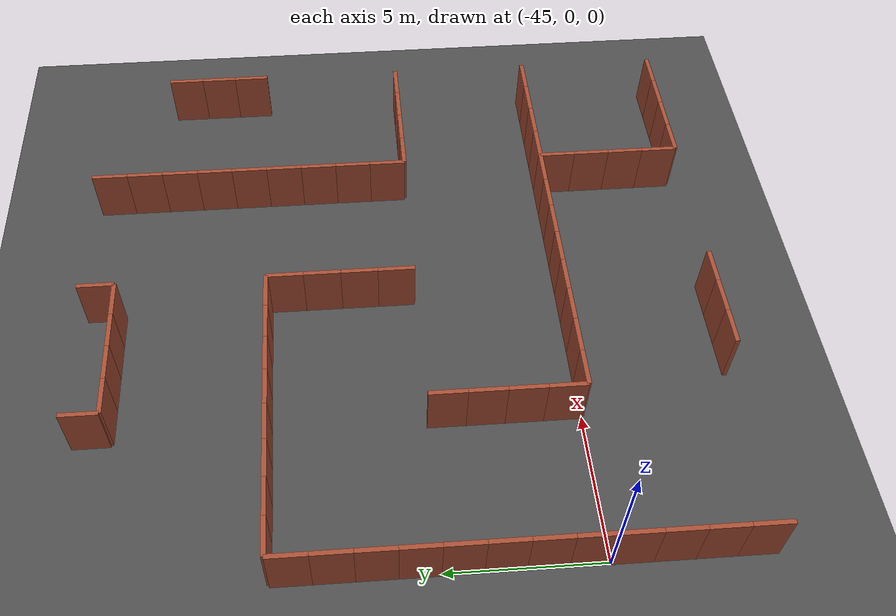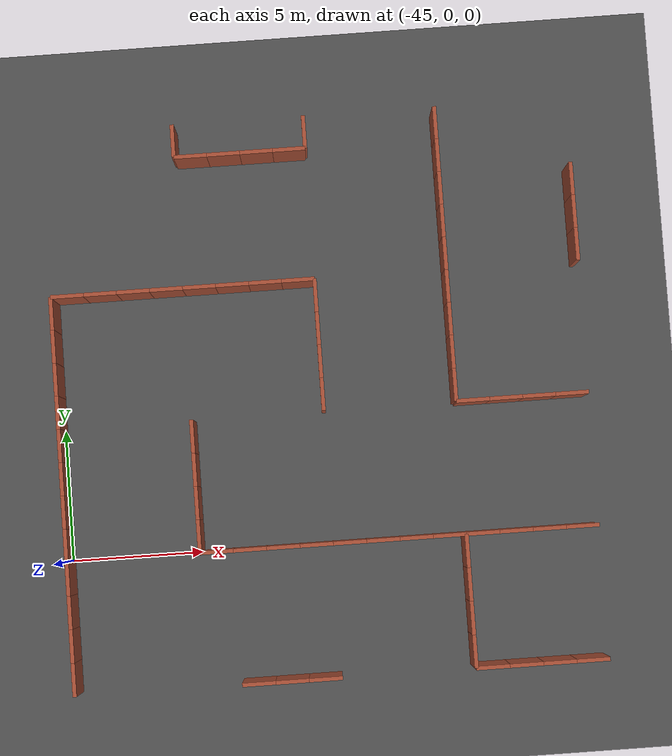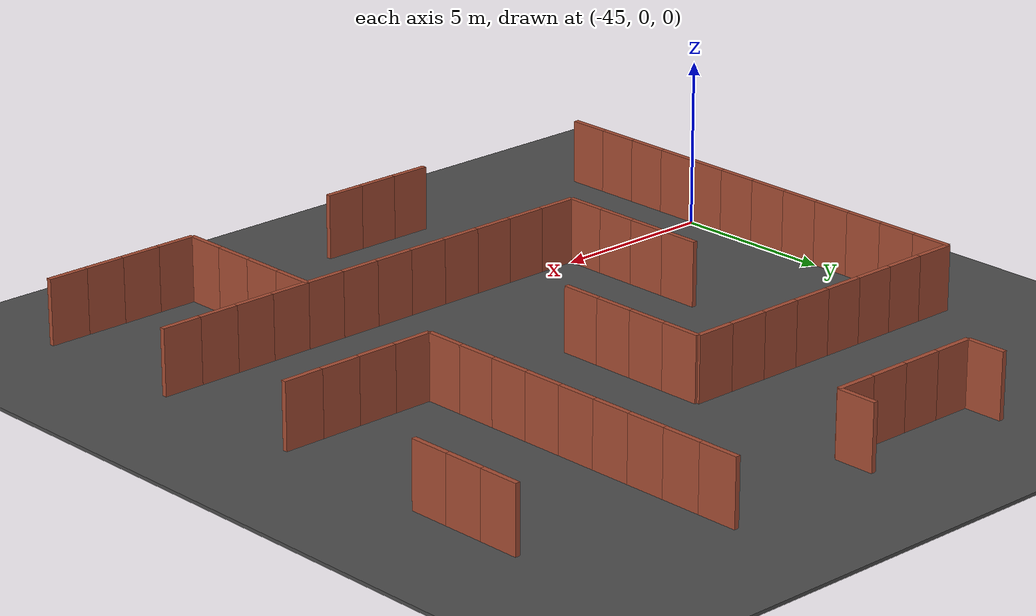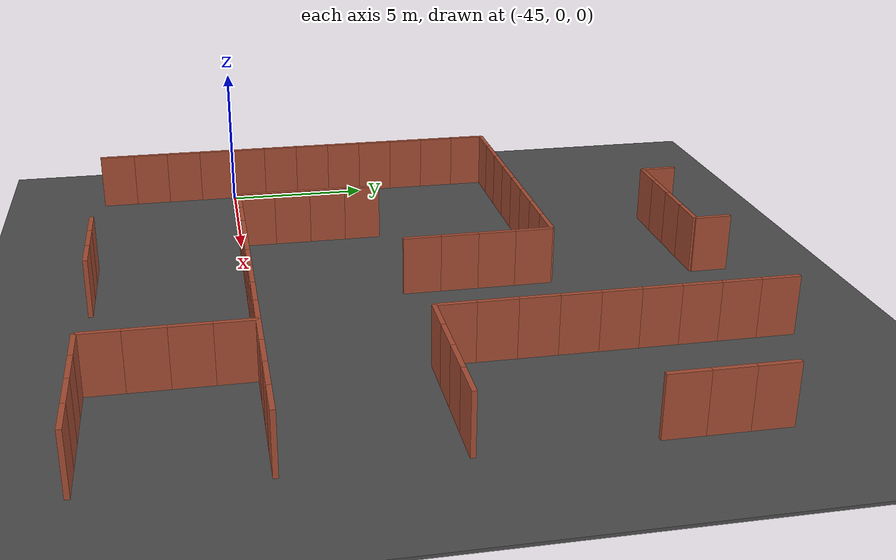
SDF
<sdf version="1.6">
 <world name="default">
  <model name="ground_plane">
   <static>1</static>
   <link name="link">
    <collision name="collision">
     <geometry><plane><normal>0 0 1</normal><size>100 100</size></plane></geometry>
     <surface><friction><ode><mu>100</mu><mu2>50</mu2></ode></friction></surface>
    </collision>
    <visual name="visual">
     <cast_shadows>0</cast_shadows>
     <geometry><plane><normal>0 0 1</normal><size>100 100</size></plane></geometry>
     <material>
      <script><uri>file://media/materials/scripts/gazebo.material</uri><name>Gazebo/Grey</name></script>
     </material>
    </visual>
   </link>
  </model>
  <model name="asphalt_plane">
   <static>1</static>
   <link name="link">
    <collision name="collision"><geometry><box><size>100 100 0.1</size></box></geometry></collision>
    <visual name="visual">
     <cast_shadows>0</cast_shadows>
     <geometry><box><size>100 100 0.1</size></box></geometry>
     <material>
      <script>
       <uri>model://asphalt_plane/materials/scripts</uri>
       <uri>model://asphalt_plane/materials/textures</uri>
       <name>vrc/asphalt</name>
      </script>
     </material>
    </visual>
   </link>
  </model>
  <model name="brick_wall_2_18_horizontal1">
   <pose>-45 -4.375 0 0 -0 1.5708</pose>
   <link name="Wall_0">
    <collision name="Wall_0_Collision">
     <geometry><box><size>1.25 0.15 2</size></box></geometry>
     <pose>0 0 1 0 -0 0</pose>
    </collision>
    <visual name="Wall_0_Visual">
     <pose>0 0 1 0 -0 0</pose>
     <geometry><box><size>1.25 0.15 2</size></box></geometry>
     <material>
      <script><uri>file://media/materials/scripts/gazebo.material</uri><name>Gazebo/Bricks</name></script>
      <ambient>1 1 1 1</ambient>
     </material>
     <meta><layer>0</layer></meta>
    </visual>
   </link>
   <static>1</static>
  </model>
  <model name="brick_wall_2_19_horizontal1">
   <pose>-45 -1.875 0 0 -0 1.5708</pose>
   <link name="Wall_0">
    <collision name="Wall_0_Collision">
     <geometry><box><size>1.25 0.15 2</size></box></geometry>
     <pose>0 0 1 0 -0 0</pose>
    </collision>
    <visual name="Wall_0_Visual">
     <pose>0 0 1 0 -0 0</pose>
     <geometry><box><size>1.25 0.15 2</size></box></geometry>
     <material>
      <script><uri>file://media/materials/scripts/gazebo.material</uri><name>Gazebo/Bricks</name></script>
      <ambient>1 1 1 1</ambient>
     </material>
     <meta><layer>0</layer></meta>
    </visual>
   </link>
   <static>1</static>
  </model>
  <model name="brick_wall_2_19_horizontal2">
   <pose>-45 -3.125 0 0 -0 1.5708</pose>
   <link name="Wall_0">
    <collision name="Wall_0_Collision">
     <geometry><box><size>1.25 0.15 2</size></box></geometry>
     <pose>0 0 1 0 -0 0</pose>
    </collision>
    <visual name="Wall_0_Visual">
     <pose>0 0 1 0 -0 0</pose>
     <geometry><box><size>1.25 0.15 2</size></box></geometry>
     <material>
      <script><uri>file://media/materials/scripts/gazebo.material</uri><name>Gazebo/Bricks</name></script>
      <ambient>1 1 1 1</ambient>
     </material>
     <meta><layer>0</layer></meta>
    </visual>
   </link>
   <static>1</static>
  </model>
  <model name="brick_wall_2_20_horizontal1">
   <pose>-45 0.625 0 0 -0 1.5708</pose>
   <link name="Wall_0">
    <collision name="Wall_0_Collision">
     <geometry><box><size>1.25 0.15 2</size></box></geometry>
     <pose>0 0 1 0 -0 0</pose>
    </collision>
    <visual name="Wall_0_Visual">
     <pose>0 0 1 0 -0 0</pose>
     <geometry><box><size>1.25 0.15 2</size></box></geometry>
     <material>
      <script><uri>file://media/materials/scripts/gazebo.material</uri><name>Gazebo/Bricks</name></script>
      <ambient>1 1 1 1</ambient>
     </material>
     <meta><layer>0</layer></meta>
    </visual>
   </link>
   <static>1</static>
  </model>
  <model name="brick_wall_2_20_horizontal2">
   <pose>-45 -0.625 0 0 -0 1.5708</pose>
   <link name="Wall_0">
    <collision name="Wall_0_Collision">
     <geometry><box><size>1.25 0.15 2</size></box></geometry>
     <pose>0 0 1 0 -0 0</pose>
    </collision>
    <visual name="Wall_0_Visual">
     <pose>0 0 1 0 -0 0</pose>
     <geometry><box><size>1.25 0.15 2</size></box></geometry>
     <material>
      <script><uri>file://media/materials/scripts/gazebo.material</uri><name>Gazebo/Bricks</name></script>
      <ambient>1 1 1 1</ambient>
     </material>
     <meta><layer>0</layer></meta>
    </visual>
   </link>
   <static>1</static>
  </model>
  <model name="brick_wall_2_21_horizontal1">
   <pose>-45 3.125 0 0 -0 1.5708</pose>
   <link name="Wall_0">
    <collision name="Wall_0_Collision">
     <geometry><box><size>1.25 0.15 2</size></box></geometry>
     <pose>0 0 1 0 -0 0</pose>
    </collision>
    <visual name="Wall_0_Visual">
     <pose>0 0 1 0 -0 0</pose>
     <geometry><box><size>1.25 0.15 2</size></box></geometry>
     <material>
      <script><uri>file://media/materials/scripts/gazebo.material</uri><name>Gazebo/Bricks</name></script>
      <ambient>1 1 1 1</ambient>
     </material>
     <meta><layer>0</layer></meta>
    </visual>
   </link>
   <static>1</static>
  </model>
  <model name="brick_wall_2_21_horizontal2">
   <pose>-45 1.875 0 0 -0 1.5708</pose>
   <link name="Wall_0">
    <collision name="Wall_0_Collision">
     <geometry><box><size>1.25 0.15 2</size></box></geometry>
     <pose>0 0 1 0 -0 0</pose>
    </collision>
    <visual name="Wall_0_Visual">
     <pose>0 0 1 0 -0 0</pose>
     <geometry><box><size>1.25 0.15 2</size></box></geometry>
     <material>
      <script><uri>file://media/materials/scripts/gazebo.material</uri><name>Gazebo/Bricks</name></script>
      <ambient>1 1 1 1</ambient>
     </material>
     <meta><layer>0</layer></meta>
    </visual>
   </link>
   <static>1</static>
  </model>
  <model name="brick_wall_2_22_horizontal1">
   <pose>-45 5.625 0 0 -0 1.5708</pose>
   <link name="Wall_0">
    <collision name="Wall_0_Collision">
     <geometry><box><size>1.25 0.15 2</size></box></geometry>
     <pose>0 0 1 0 -0 0</pose>
    </collision>
    <visual name="Wall_0_Visual">
     <pose>0 0 1 0 -0 0</pose>
     <geometry><box><size>1.25 0.15 2</size></box></geometry>
     <material>
      <script><uri>file://media/materials/scripts/gazebo.material</uri><name>Gazebo/Bricks</name></script>
      <ambient>1 1 1 1</ambient>
     </material>
     <meta><layer>0</layer></meta>
    </visual>
   </link>
   <static>1</static>
  </model>
  <model name="brick_wall_2_22_horizontal2">
   <pose>-45 4.375 0 0 -0 1.5708</pose>
   <link name="Wall_0">
    <collision name="Wall_0_Collision">
     <geometry><box><size>1.25 0.15 2</size></box></geometry>
     <pose>0 0 1 0 -0 0</pose>
    </collision>
    <visual name="Wall_0_Visual">
     <pose>0 0 1 0 -0 0</pose>
     <geometry><box><size>1.25 0.15 2</size></box></geometry>
     <material>
      <script><uri>file://media/materials/scripts/gazebo.material</uri><name>Gazebo/Bricks</name></script>
      <ambient>1 1 1 1</ambient>
     </material>
     <meta><layer>0</layer></meta>
    </visual>
   </link>
   <static>1</static>
  </model>
  <model name="brick_wall_2_23_horizontal1">
   <pose>-45 8.125 0 0 -0 1.5708</pose>
   <link name="Wall_0">
    <collision name="Wall_0_Collision">
     <geometry><box><size>1.25 0.15 2</size></box></geometry>
     <pose>0 0 1 0 -0 0</pose>
    </collision>
    <visual name="Wall_0_Visual">
     <pose>0 0 1 0 -0 0</pose>
     <geometry><box><size>1.25 0.15 2</size></box></geometry>
     <material>
      <script><uri>file://media/materials/scripts/gazebo.material</uri><name>Gazebo/Bricks</name></script>
      <ambient>1 1 1 1</ambient>
     </material>
     <meta><layer>0</layer></meta>
    </visual>
   </link>
   <static>1</static>
  </model>
  <model name="brick_wall_2_23_horizontal2">
   <pose>-45 6.875 0 0 -0 1.5708</pose>
   <link name="Wall_0">
    <collision name="Wall_0_Collision">
     <geometry><box><size>1.25 0.15 2</size></box></geometry>
     <pose>0 0 1 0 -0 0</pose>
    </collision>
    <visual name="Wall_0_Visual">
     <pose>0 0 1 0 -0 0</pose>
     <geometry><box><size>1.25 0.15 2</size></box></geometry>
     <material>
      <script><uri>file://media/materials/scripts/gazebo.material</uri><name>Gazebo/Bricks</name></script>
      <ambient>1 1 1 1</ambient>
     </material>
     <meta><layer>0</layer></meta>
    </visual>
   </link>
   <static>1</static>
  </model>
  <model name="brick_wall_2_24_vertical1">
   <pose>-44.375 10 0 0 -0 0</pose>
   <link name="Wall_0">
    <collision name="Wall_0_Collision">
     <geometry><box><size>1.25 0.15 2</size></box></geometry>
     <pose>0 0 1 0 -0 0</pose>
    </collision>
    <visual name="Wall_0_Visual">
     <pose>0 0 1 0 -0 0</pose>
     <geometry><box><size>1.25 0.15 2</size></box></geometry>
     <material>
      <script><uri>file://media/materials/scripts/gazebo.material</uri><name>Gazebo/Bricks</name></script>
      <ambient>1 1 1 1</ambient>
     </material>
     <meta><layer>0</layer></meta>
    </visual>
   </link>
   <static>1</static>
  </model>
  <model name="brick_wall_2_24_horizontal2">
   <pose>-45 9.375 0 0 -0 1.5708</pose>
   <link name="Wall_0">
    <collision name="Wall_0_Collision">
     <geometry><box><size>1.25 0.15 2</size></box></geometry>
     <pose>0 0 1 0 -0 0</pose>
    </collision>
    <visual name="Wall_0_Visual">
     <pose>0 0 1 0 -0 0</pose>
     <geometry><box><size>1.25 0.15 2</size></box></geometry>
     <material>
      <script><uri>file://media/materials/scripts/gazebo.material</uri><name>Gazebo/Bricks</name></script>
      <ambient>1 1 1 1</ambient>
     </material>
     <meta><layer>0</layer></meta>
    </visual>
   </link>
   <static>1</static>
  </model>
  <model name="brick_wall_3_24_vertical1">
   <pose>-41.875 10 0 0 -0 0</pose>
   <link name="Wall_0">
    <collision name="Wall_0_Collision">
     <geometry><box><size>1.25 0.15 2</size></box></geometry>
     <pose>0 0 1 0 -0 0</pose>
    </collision>
    <visual name="Wall_0_Visual">
     <pose>0 0 1 0 -0 0</pose>
     <geometry><box><size>1.25 0.15 2</size></box></geometry>
     <material>
      <script><uri>file://media/materials/scripts/gazebo.material</uri><name>Gazebo/Bricks</name></script>
      <ambient>1 1 1 1</ambient>
     </material>
     <meta><layer>0</layer></meta>
    </visual>
   </link>
   <static>1</static>
  </model>
  <model name="brick_wall_3_24_vertical2">
   <pose>-43.125 10 0 0 -0 0</pose>
   <link name="Wall_0">
    <collision name="Wall_0_Collision">
     <geometry><box><size>1.25 0.15 2</size></box></geometry>
     <pose>0 0 1 0 -0 0</pose>
    </collision>
    <visual name="Wall_0_Visual">
     <pose>0 0 1 0 -0 0</pose>
     <geometry><box><size>1.25 0.15 2</size></box></geometry>
     <material>
      <script><uri>file://media/materials/scripts/gazebo.material</uri><name>Gazebo/Bricks</name></script>
      <ambient>1 1 1 1</ambient>
     </material>
     <meta><layer>0</layer></meta>
    </visual>
   </link>
   <static>1</static>
  </model>
  <model name="brick_wall_4_20_vertical1">
   <pose>-39.375 0 0 0 -0 0</pose>
   <link name="Wall_0">
    <collision name="Wall_0_Collision">
     <geometry><box><size>1.25 0.15 2</size></box></geometry>
     <pose>0 0 1 0 -0 0</pose>
    </collision>
    <visual name="Wall_0_Visual">
     <pose>0 0 1 0 -0 0</pose>
     <geometry><box><size>1.25 0.15 2</size></box></geometry>
     <material>
      <script><uri>file://media/materials/scripts/gazebo.material</uri><name>Gazebo/Bricks</name></script>
      <ambient>1 1 1 1</ambient>
     </material>
     <meta><layer>0</layer></meta>
    </visual>
   </link>
   <static>1</static>
  </model>
  <model name="brick_wall_4_20_horizontal1">
   <pose>-40 0.625 0 0 -0 1.5708</pose>
   <link name="Wall_0">
    <collision name="Wall_0_Collision">
     <geometry><box><size>1.25 0.15 2</size></box></geometry>
     <pose>0 0 1 0 -0 0</pose>
    </collision>
    <visual name="Wall_0_Visual">
     <pose>0 0 1 0 -0 0</pose>
     <geometry><box><size>1.25 0.15 2</size></box></geometry>
     <material>
      <script><uri>file://media/materials/scripts/gazebo.material</uri><name>Gazebo/Bricks</name></script>
      <ambient>1 1 1 1</ambient>
     </material>
     <meta><layer>0</layer></meta>
    </visual>
   </link>
   <static>1</static>
  </model>
  <model name="brick_wall_4_21_horizontal1">
   <pose>-40 3.125 0 0 -0 1.5708</pose>
   <link name="Wall_0">
    <collision name="Wall_0_Collision">
     <geometry><box><size>1.25 0.15 2</size></box></geometry>
     <pose>0 0 1 0 -0 0</pose>
    </collision>
    <visual name="Wall_0_Visual">
     <pose>0 0 1 0 -0 0</pose>
     <geometry><box><size>1.25 0.15 2</size></box></geometry>
     <material>
      <script><uri>file://media/materials/scripts/gazebo.material</uri><name>Gazebo/Bricks</name></script>
      <ambient>1 1 1 1</ambient>
     </material>
     <meta><layer>0</layer></meta>
    </visual>
   </link>
   <static>1</static>
  </model>
  <model name="brick_wall_4_21_horizontal2">
   <pose>-40 1.875 0 0 -0 1.5708</pose>
   <link name="Wall_0">
    <collision name="Wall_0_Collision">
     <geometry><box><size>1.25 0.15 2</size></box></geometry>
     <pose>0 0 1 0 -0 0</pose>
    </collision>
    <visual name="Wall_0_Visual">
     <pose>0 0 1 0 -0 0</pose>
     <geometry><box><size>1.25 0.15 2</size></box></geometry>
     <material>
      <script><uri>file://media/materials/scripts/gazebo.material</uri><name>Gazebo/Bricks</name></script>
      <ambient>1 1 1 1</ambient>
     </material>
     <meta><layer>0</layer></meta>
    </visual>
   </link>
   <static>1</static>
  </model>
  <model name="brick_wall_4_22_horizontal2">
   <pose>-40 4.375 0 0 -0 1.5708</pose>
   <link name="Wall_0">
    <collision name="Wall_0_Collision">
     <geometry><box><size>1.25 0.15 2</size></box></geometry>
     <pose>0 0 1 0 -0 0</pose>
    </collision>
    <visual name="Wall_0_Visual">
     <pose>0 0 1 0 -0 0</pose>
     <geometry><box><size>1.25 0.15 2</size></box></geometry>
     <material>
      <script><uri>file://media/materials/scripts/gazebo.material</uri><name>Gazebo/Bricks</name></script>
      <ambient>1 1 1 1</ambient>
     </material>
     <meta><layer>0</layer></meta>
    </visual>
   </link>
   <static>1</static>
  </model>
  <model name="brick_wall_4_24_vertical1">
   <pose>-39.375 10 0 0 -0 0</pose>
   <link name="Wall_0">
    <collision name="Wall_0_Collision">
     <geometry><box><size>1.25 0.15 2</size></box></geometry>
     <pose>0 0 1 0 -0 0</pose>
    </collision>
    <visual name="Wall_0_Visual">
     <pose>0 0 1 0 -0 0</pose>
     <geometry><box><size>1.25 0.15 2</size></box></geometry>
     <material>
      <script><uri>file://media/materials/scripts/gazebo.material</uri><name>Gazebo/Bricks</name></script>
      <ambient>1 1 1 1</ambient>
     </material>
     <meta><layer>0</layer></meta>
    </visual>
   </link>
   <static>1</static>
  </model>
  <model name="brick_wall_4_24_vertical2">
   <pose>-40.625 10 0 0 -0 0</pose>
   <link name="Wall_0">
    <collision name="Wall_0_Collision">
     <geometry><box><size>1.25 0.15 2</size></box></geometry>
     <pose>0 0 1 0 -0 0</pose>
    </collision>
    <visual name="Wall_0_Visual">
     <pose>0 0 1 0 -0 0</pose>
     <geometry><box><size>1.25 0.15 2</size></box></geometry>
     <material>
      <script><uri>file://media/materials/scripts/gazebo.material</uri><name>Gazebo/Bricks</name></script>
      <ambient>1 1 1 1</ambient>
     </material>
     <meta><layer>0</layer></meta>
    </visual>
   </link>
   <static>1</static>
  </model>
  <model name="brick_wall_4_26_vertical1">
   <pose>-39.375 15 0 0 -0 0</pose>
   <link name="Wall_0">
    <collision name="Wall_0_Collision">
     <geometry><box><size>1.25 0.15 2</size></box></geometry>
     <pose>0 0 1 0 -0 0</pose>
    </collision>
    <visual name="Wall_0_Visual">
     <pose>0 0 1 0 -0 0</pose>
     <geometry><box><size>1.25 0.15 2</size></box></geometry>
     <material>
      <script><uri>file://media/materials/scripts/gazebo.material</uri><name>Gazebo/Bricks</name></script>
      <ambient>1 1 1 1</ambient>
     </material>
     <meta><layer>0</layer></meta>
    </visual>
   </link>
   <static>1</static>
  </model>
  <model name="brick_wall_4_26_horizontal1">
   <pose>-40 15.625 0 0 -0 1.5708</pose>
   <link name="Wall_0">
    <collision name="Wall_0_Collision">
     <geometry><box><size>1.25 0.15 2</size></box></geometry>
     <pose>0 0 1 0 -0 0</pose>
    </collision>
    <visual name="Wall_0_Visual">
     <pose>0 0 1 0 -0 0</pose>
     <geometry><box><size>1.25 0.15 2</size></box></geometry>
     <material>
      <script><uri>file://media/materials/scripts/gazebo.material</uri><name>Gazebo/Bricks</name></script>
      <ambient>1 1 1 1</ambient>
     </material>
     <meta><layer>0</layer></meta>
    </visual>
   </link>
   <static>1</static>
  </model>
  <model name="brick_wall_5_18_vertical1">
   <pose>-36.875 -5 0 0 -0 0</pose>
   <link name="Wall_0">
    <collision name="Wall_0_Collision">
     <geometry><box><size>1.25 0.15 2</size></box></geometry>
     <pose>0 0 1 0 -0 0</pose>
    </collision>
    <visual name="Wall_0_Visual">
     <pose>0 0 1 0 -0 0</pose>
     <geometry><box><size>1.25 0.15 2</size></box></geometry>
     <material>
      <script><uri>file://media/materials/scripts/gazebo.material</uri><name>Gazebo/Bricks</name></script>
      <ambient>1 1 1 1</ambient>
     </material>
     <meta><layer>0</layer></meta>
    </visual>
   </link>
   <static>1</static>
  </model>
  <model name="brick_wall_5_18_vertical2">
   <pose>-38.125 -5 0 0 -0 0</pose>
   <link name="Wall_0">
    <collision name="Wall_0_Collision">
     <geometry><box><size>1.25 0.15 2</size></box></geometry>
     <pose>0 0 1 0 -0 0</pose>
    </collision>
    <visual name="Wall_0_Visual">
     <pose>0 0 1 0 -0 0</pose>
     <geometry><box><size>1.25 0.15 2</size></box></geometry>
     <material>
      <script><uri>file://media/materials/scripts/gazebo.material</uri><name>Gazebo/Bricks</name></script>
      <ambient>1 1 1 1</ambient>
     </material>
     <meta><layer>0</layer></meta>
    </visual>
   </link>
   <static>1</static>
  </model>
  <model name="brick_wall_5_20_vertical1">
   <pose>-36.875 0 0 0 -0 0</pose>
   <link name="Wall_0">
    <collision name="Wall_0_Collision">
     <geometry><box><size>1.25 0.15 2</size></box></geometry>
     <pose>0 0 1 0 -0 0</pose>
    </collision>
    <visual name="Wall_0_Visual">
     <pose>0 0 1 0 -0 0</pose>
     <geometry><box><size>1.25 0.15 2</size></box></geometry>
     <material>
      <script><uri>file://media/materials/scripts/gazebo.material</uri><name>Gazebo/Bricks</name></script>
      <ambient>1 1 1 1</ambient>
     </material>
     <meta><layer>0</layer></meta>
    </visual>
   </link>
   <static>1</static>
  </model>
  <model name="brick_wall_5_20_vertical2">
   <pose>-38.125 0 0 0 -0 0</pose>
   <link name="Wall_0">
    <collision name="Wall_0_Collision">
     <geometry><box><size>1.25 0.15 2</size></box></geometry>
     <pose>0 0 1 0 -0 0</pose>
    </collision>
    <visual name="Wall_0_Visual">
     <pose>0 0 1 0 -0 0</pose>
     <geometry><box><size>1.25 0.15 2</size></box></geometry>
     <material>
      <script><uri>file://media/materials/scripts/gazebo.material</uri><name>Gazebo/Bricks</name></script>
      <ambient>1 1 1 1</ambient>
     </material>
     <meta><layer>0</layer></meta>
    </visual>
   </link>
   <static>1</static>
  </model>
  <model name="brick_wall_5_24_vertical1">
   <pose>-36.875 10 0 0 -0 0</pose>
   <link name="Wall_0">
    <collision name="Wall_0_Collision">
     <geometry><box><size>1.25 0.15 2</size></box></geometry>
     <pose>0 0 1 0 -0 0</pose>
    </collision>
    <visual name="Wall_0_Visual">
     <pose>0 0 1 0 -0 0</pose>
     <geometry><box><size>1.25 0.15 2</size></box></geometry>
     <material>
      <script><uri>file://media/materials/scripts/gazebo.material</uri><name>Gazebo/Bricks</name></script>
      <ambient>1 1 1 1</ambient>
     </material>
     <meta><layer>0</layer></meta>
    </visual>
   </link>
   <static>1</static>
  </model>
  <model name="brick_wall_5_24_vertical2">
   <pose>-38.125 10 0 0 -0 0</pose>
   <link name="Wall_0">
    <collision name="Wall_0_Collision">
     <geometry><box><size>1.25 0.15 2</size></box></geometry>
     <pose>0 0 1 0 -0 0</pose>
    </collision>
    <visual name="Wall_0_Visual">
     <pose>0 0 1 0 -0 0</pose>
     <geometry><box><size>1.25 0.15 2</size></box></geometry>
     <material>
      <script><uri>file://media/materials/scripts/gazebo.material</uri><name>Gazebo/Bricks</name></script>
      <ambient>1 1 1 1</ambient>
     </material>
     <meta><layer>0</layer></meta>
    </visual>
   </link>
   <static>1</static>
  </model>
  <model name="brick_wall_5_26_vertical1">
   <pose>-36.875 15 0 0 -0 0</pose>
   <link name="Wall_0">
    <collision name="Wall_0_Collision">
     <geometry><box><size>1.25 0.15 2</size></box></geometry>
     <pose>0 0 1 0 -0 0</pose>
    </collision>
    <visual name="Wall_0_Visual">
     <pose>0 0 1 0 -0 0</pose>
     <geometry><box><size>1.25 0.15 2</size></box></geometry>
     <material>
      <script><uri>file://media/materials/scripts/gazebo.material</uri><name>Gazebo/Bricks</name></script>
      <ambient>1 1 1 1</ambient>
     </material>
     <meta><layer>0</layer></meta>
    </visual>
   </link>
   <static>1</static>
  </model>
  <model name="brick_wall_5_26_vertical2">
   <pose>-38.125 15 0 0 -0 0</pose>
   <link name="Wall_0">
    <collision name="Wall_0_Collision">
     <geometry><box><size>1.25 0.15 2</size></box></geometry>
     <pose>0 0 1 0 -0 0</pose>
    </collision>
    <visual name="Wall_0_Visual">
     <pose>0 0 1 0 -0 0</pose>
     <geometry><box><size>1.25 0.15 2</size></box></geometry>
     <material>
      <script><uri>file://media/materials/scripts/gazebo.material</uri><name>Gazebo/Bricks</name></script>
      <ambient>1 1 1 1</ambient>
     </material>
     <meta><layer>0</layer></meta>
    </visual>
   </link>
   <static>1</static>
  </model>
  <model name="brick_wall_6_18_vertical2">
   <pose>-35.625 -5 0 0 -0 0</pose>
   <link name="Wall_0">
    <collision name="Wall_0_Collision">
     <geometry><box><size>1.25 0.15 2</size></box></geometry>
     <pose>0 0 1 0 -0 0</pose>
    </collision>
    <visual name="Wall_0_Visual">
     <pose>0 0 1 0 -0 0</pose>
     <geometry><box><size>1.25 0.15 2</size></box></geometry>
     <material>
      <script><uri>file://media/materials/scripts/gazebo.material</uri><name>Gazebo/Bricks</name></script>
      <ambient>1 1 1 1</ambient>
     </material>
     <meta><layer>0</layer></meta>
    </visual>
   </link>
   <static>1</static>
  </model>
  <model name="brick_wall_6_20_vertical1">
   <pose>-34.375 0 0 0 -0 0</pose>
   <link name="Wall_0">
    <collision name="Wall_0_Collision">
     <geometry><box><size>1.25 0.15 2</size></box></geometry>
     <pose>0 0 1 0 -0 0</pose>
    </collision>
    <visual name="Wall_0_Visual">
     <pose>0 0 1 0 -0 0</pose>
     <geometry><box><size>1.25 0.15 2</size></box></geometry>
     <material>
      <script><uri>file://media/materials/scripts/gazebo.material</uri><name>Gazebo/Bricks</name></script>
      <ambient>1 1 1 1</ambient>
     </material>
     <meta><layer>0</layer></meta>
    </visual>
   </link>
   <static>1</static>
  </model>
  <model name="brick_wall_6_20_vertical2">
   <pose>-35.625 0 0 0 -0 0</pose>
   <link name="Wall_0">
    <collision name="Wall_0_Collision">
     <geometry><box><size>1.25 0.15 2</size></box></geometry>
     <pose>0 0 1 0 -0 0</pose>
    </collision>
    <visual name="Wall_0_Visual">
     <pose>0 0 1 0 -0 0</pose>
     <geometry><box><size>1.25 0.15 2</size></box></geometry>
     <material>
      <script><uri>file://media/materials/scripts/gazebo.material</uri><name>Gazebo/Bricks</name></script>
      <ambient>1 1 1 1</ambient>
     </material>
     <meta><layer>0</layer></meta>
    </visual>
   </link>
   <static>1</static>
  </model>
  <model name="brick_wall_6_22_horizontal1">
   <pose>-35 5.625 0 0 -0 1.5708</pose>
   <link name="Wall_0">
    <collision name="Wall_0_Collision">
     <geometry><box><size>1.25 0.15 2</size></box></geometry>
     <pose>0 0 1 0 -0 0</pose>
    </collision>
    <visual name="Wall_0_Visual">
     <pose>0 0 1 0 -0 0</pose>
     <geometry><box><size>1.25 0.15 2</size></box></geometry>
     <material>
      <script><uri>file://media/materials/scripts/gazebo.material</uri><name>Gazebo/Bricks</name></script>
      <ambient>1 1 1 1</ambient>
     </material>
     <meta><layer>0</layer></meta>
    </visual>
   </link>
   <static>1</static>
  </model>
  <model name="brick_wall_6_23_horizontal1">
   <pose>-35 8.125 0 0 -0 1.5708</pose>
   <link name="Wall_0">
    <collision name="Wall_0_Collision">
     <geometry><box><size>1.25 0.15 2</size></box></geometry>
     <pose>0 0 1 0 -0 0</pose>
    </collision>
    <visual name="Wall_0_Visual">
     <pose>0 0 1 0 -0 0</pose>
     <geometry><box><size>1.25 0.15 2</size></box></geometry>
     <material>
      <script><uri>file://media/materials/scripts/gazebo.material</uri><name>Gazebo/Bricks</name></script>
      <ambient>1 1 1 1</ambient>
     </material>
     <meta><layer>0</layer></meta>
    </visual>
   </link>
   <static>1</static>
  </model>
  <model name="brick_wall_6_23_horizontal2">
   <pose>-35 6.875 0 0 -0 1.5708</pose>
   <link name="Wall_0">
    <collision name="Wall_0_Collision">
     <geometry><box><size>1.25 0.15 2</size></box></geometry>
     <pose>0 0 1 0 -0 0</pose>
    </collision>
    <visual name="Wall_0_Visual">
     <pose>0 0 1 0 -0 0</pose>
     <geometry><box><size>1.25 0.15 2</size></box></geometry>
     <material>
      <script><uri>file://media/materials/scripts/gazebo.material</uri><name>Gazebo/Bricks</name></script>
      <ambient>1 1 1 1</ambient>
     </material>
     <meta><layer>0</layer></meta>
    </visual>
   </link>
   <static>1</static>
  </model>
  <model name="brick_wall_6_24_vertical2">
   <pose>-35.625 10 0 0 -0 0</pose>
   <link name="Wall_0">
    <collision name="Wall_0_Collision">
     <geometry><box><size>1.25 0.15 2</size></box></geometry>
     <pose>0 0 1 0 -0 0</pose>
    </collision>
    <visual name="Wall_0_Visual">
     <pose>0 0 1 0 -0 0</pose>
     <geometry><box><size>1.25 0.15 2</size></box></geometry>
     <material>
      <script><uri>file://media/materials/scripts/gazebo.material</uri><name>Gazebo/Bricks</name></script>
      <ambient>1 1 1 1</ambient>
     </material>
     <meta><layer>0</layer></meta>
    </visual>
   </link>
   <static>1</static>
  </model>
  <model name="brick_wall_6_24_horizontal2">
   <pose>-35 9.375 0 0 -0 1.5708</pose>
   <link name="Wall_0">
    <collision name="Wall_0_Collision">
     <geometry><box><size>1.25 0.15 2</size></box></geometry>
     <pose>0 0 1 0 -0 0</pose>
    </collision>
    <visual name="Wall_0_Visual">
     <pose>0 0 1 0 -0 0</pose>
     <geometry><box><size>1.25 0.15 2</size></box></geometry>
     <material>
      <script><uri>file://media/materials/scripts/gazebo.material</uri><name>Gazebo/Bricks</name></script>
      <ambient>1 1 1 1</ambient>
     </material>
     <meta><layer>0</layer></meta>
    </visual>
   </link>
   <static>1</static>
  </model>
  <model name="brick_wall_6_26_vertical2">
   <pose>-35.625 15 0 0 -0 0</pose>
   <link name="Wall_0">
    <collision name="Wall_0_Collision">
     <geometry><box><size>1.25 0.15 2</size></box></geometry>
     <pose>0 0 1 0 -0 0</pose>
    </collision>
    <visual name="Wall_0_Visual">
     <pose>0 0 1 0 -0 0</pose>
     <geometry><box><size>1.25 0.15 2</size></box></geometry>
     <material>
      <script><uri>file://media/materials/scripts/gazebo.material</uri><name>Gazebo/Bricks</name></script>
      <ambient>1 1 1 1</ambient>
     </material>
     <meta><layer>0</layer></meta>
    </visual>
   </link>
   <static>1</static>
  </model>
  <model name="brick_wall_6_26_horizontal1">
   <pose>-35 15.625 0 0 -0 1.5708</pose>
   <link name="Wall_0">
    <collision name="Wall_0_Collision">
     <geometry><box><size>1.25 0.15 2</size></box></geometry>
     <pose>0 0 1 0 -0 0</pose>
    </collision>
    <visual name="Wall_0_Visual">
     <pose>0 0 1 0 -0 0</pose>
     <geometry><box><size>1.25 0.15 2</size></box></geometry>
     <material>
      <script><uri>file://media/materials/scripts/gazebo.material</uri><name>Gazebo/Bricks</name></script>
      <ambient>1 1 1 1</ambient>
     </material>
     <meta><layer>0</layer></meta>
    </visual>
   </link>
   <static>1</static>
  </model>
  <model name="brick_wall_7_20_vertical1">
   <pose>-31.875 0 0 0 -0 0</pose>
   <link name="Wall_0">
    <collision name="Wall_0_Collision">
     <geometry><box><size>1.25 0.15 2</size></box></geometry>
     <pose>0 0 1 0 -0 0</pose>
    </collision>
    <visual name="Wall_0_Visual">
     <pose>0 0 1 0 -0 0</pose>
     <geometry><box><size>1.25 0.15 2</size></box></geometry>
     <material>
      <script><uri>file://media/materials/scripts/gazebo.material</uri><name>Gazebo/Bricks</name></script>
      <ambient>1 1 1 1</ambient>
     </material>
     <meta><layer>0</layer></meta>
    </visual>
   </link>
   <static>1</static>
  </model>
  <model name="brick_wall_7_20_vertical2">
   <pose>-33.125 0 0 0 -0 0</pose>
   <link name="Wall_0">
    <collision name="Wall_0_Collision">
     <geometry><box><size>1.25 0.15 2</size></box></geometry>
     <pose>0 0 1 0 -0 0</pose>
    </collision>
    <visual name="Wall_0_Visual">
     <pose>0 0 1 0 -0 0</pose>
     <geometry><box><size>1.25 0.15 2</size></box></geometry>
     <material>
      <script><uri>file://media/materials/scripts/gazebo.material</uri><name>Gazebo/Bricks</name></script>
      <ambient>1 1 1 1</ambient>
     </material>
     <meta><layer>0</layer></meta>
    </visual>
   </link>
   <static>1</static>
  </model>
  <model name="brick_wall_8_18_vertical1">
   <pose>-29.375 -5 0 0 -0 0</pose>
   <link name="Wall_0">
    <collision name="Wall_0_Collision">
     <geometry><box><size>1.25 0.15 2</size></box></geometry>
     <pose>0 0 1 0 -0 0</pose>
    </collision>
    <visual name="Wall_0_Visual">
     <pose>0 0 1 0 -0 0</pose>
     <geometry><box><size>1.25 0.15 2</size></box></geometry>
     <material>
      <script><uri>file://media/materials/scripts/gazebo.material</uri><name>Gazebo/Bricks</name></script>
      <ambient>1 1 1 1</ambient>
     </material>
     <meta><layer>0</layer></meta>
    </visual>
   </link>
   <static>1</static>
  </model>
  <model name="brick_wall_8_18_horizontal1">
   <pose>-30 -4.375 0 0 -0 1.5708</pose>
   <link name="Wall_0">
    <collision name="Wall_0_Collision">
     <geometry><box><size>1.25 0.15 2</size></box></geometry>
     <pose>0 0 1 0 -0 0</pose>
    </collision>
    <visual name="Wall_0_Visual">
     <pose>0 0 1 0 -0 0</pose>
     <geometry><box><size>1.25 0.15 2</size></box></geometry>
     <material>
      <script><uri>file://media/materials/scripts/gazebo.material</uri><name>Gazebo/Bricks</name></script>
      <ambient>1 1 1 1</ambient>
     </material>
     <meta><layer>0</layer></meta>
    </visual>
   </link>
   <static>1</static>
  </model>
  <model name="brick_wall_8_19_horizontal1">
   <pose>-30 -1.875 0 0 -0 1.5708</pose>
   <link name="Wall_0">
    <collision name="Wall_0_Collision">
     <geometry><box><size>1.25 0.15 2</size></box></geometry>
     <pose>0 0 1 0 -0 0</pose>
    </collision>
    <visual name="Wall_0_Visual">
     <pose>0 0 1 0 -0 0</pose>
     <geometry><box><size>1.25 0.15 2</size></box></geometry>
     <material>
      <script><uri>file://media/materials/scripts/gazebo.material</uri><name>Gazebo/Bricks</name></script>
      <ambient>1 1 1 1</ambient>
     </material>
     <meta><layer>0</layer></meta>
    </visual>
   </link>
   <static>1</static>
  </model>
  <model name="brick_wall_8_19_horizontal2">
   <pose>-30 -3.125 0 0 -0 1.5708</pose>
   <link name="Wall_0">
    <collision name="Wall_0_Collision">
     <geometry><box><size>1.25 0.15 2</size></box></geometry>
     <pose>0 0 1 0 -0 0</pose>
    </collision>
    <visual name="Wall_0_Visual">
     <pose>0 0 1 0 -0 0</pose>
     <geometry><box><size>1.25 0.15 2</size></box></geometry>
     <material>
      <script><uri>file://media/materials/scripts/gazebo.material</uri><name>Gazebo/Bricks</name></script>
      <ambient>1 1 1 1</ambient>
     </material>
     <meta><layer>0</layer></meta>
    </visual>
   </link>
   <static>1</static>
  </model>
  <model name="brick_wall_8_20_vertical1">
   <pose>-29.375 0 0 0 -0 0</pose>
   <link name="Wall_0">
    <collision name="Wall_0_Collision">
     <geometry><box><size>1.25 0.15 2</size></box></geometry>
     <pose>0 0 1 0 -0 0</pose>
    </collision>
    <visual name="Wall_0_Visual">
     <pose>0 0 1 0 -0 0</pose>
     <geometry><box><size>1.25 0.15 2</size></box></geometry>
     <material>
      <script><uri>file://media/materials/scripts/gazebo.material</uri><name>Gazebo/Bricks</name></script>
      <ambient>1 1 1 1</ambient>
     </material>
     <meta><layer>0</layer></meta>
    </visual>
   </link>
   <static>1</static>
  </model>
  <model name="brick_wall_8_20_vertical2">
   <pose>-30.625 0 0 0 -0 0</pose>
   <link name="Wall_0">
    <collision name="Wall_0_Collision">
     <geometry><box><size>1.25 0.15 2</size></box></geometry>
     <pose>0 0 1 0 -0 0</pose>
    </collision>
    <visual name="Wall_0_Visual">
     <pose>0 0 1 0 -0 0</pose>
     <geometry><box><size>1.25 0.15 2</size></box></geometry>
     <material>
      <script><uri>file://media/materials/scripts/gazebo.material</uri><name>Gazebo/Bricks</name></script>
      <ambient>1 1 1 1</ambient>
     </material>
     <meta><layer>0</layer></meta>
    </visual>
   </link>
   <static>1</static>
  </model>
  <model name="brick_wall_8_20_horizontal2">
   <pose>-30 -0.625 0 0 -0 1.5708</pose>
   <link name="Wall_0">
    <collision name="Wall_0_Collision">
     <geometry><box><size>1.25 0.15 2</size></box></geometry>
     <pose>0 0 1 0 -0 0</pose>
    </collision>
    <visual name="Wall_0_Visual">
     <pose>0 0 1 0 -0 0</pose>
     <geometry><box><size>1.25 0.15 2</size></box></geometry>
     <material>
      <script><uri>file://media/materials/scripts/gazebo.material</uri><name>Gazebo/Bricks</name></script>
      <ambient>1 1 1 1</ambient>
     </material>
     <meta><layer>0</layer></meta>
    </visual>
   </link>
   <static>1</static>
  </model>
  <model name="brick_wall_8_22_vertical1">
   <pose>-29.375 5 0 0 -0 0</pose>
   <link name="Wall_0">
    <collision name="Wall_0_Collision">
     <geometry><box><size>1.25 0.15 2</size></box></geometry>
     <pose>0 0 1 0 -0 0</pose>
    </collision>
    <visual name="Wall_0_Visual">
     <pose>0 0 1 0 -0 0</pose>
     <geometry><box><size>1.25 0.15 2</size></box></geometry>
     <material>
      <script><uri>file://media/materials/scripts/gazebo.material</uri><name>Gazebo/Bricks</name></script>
      <ambient>1 1 1 1</ambient>
     </material>
     <meta><layer>0</layer></meta>
    </visual>
   </link>
   <static>1</static>
  </model>
  <model name="brick_wall_8_22_horizontal1">
   <pose>-30 5.625 0 0 -0 1.5708</pose>
   <link name="Wall_0">
    <collision name="Wall_0_Collision">
     <geometry><box><size>1.25 0.15 2</size></box></geometry>
     <pose>0 0 1 0 -0 0</pose>
    </collision>
    <visual name="Wall_0_Visual">
     <pose>0 0 1 0 -0 0</pose>
     <geometry><box><size>1.25 0.15 2</size></box></geometry>
     <material>
      <script><uri>file://media/materials/scripts/gazebo.material</uri><name>Gazebo/Bricks</name></script>
      <ambient>1 1 1 1</ambient>
     </material>
     <meta><layer>0</layer></meta>
    </visual>
   </link>
   <static>1</static>
  </model>
  <model name="brick_wall_8_23_horizontal1">
   <pose>-30 8.125 0 0 -0 1.5708</pose>
   <link name="Wall_0">
    <collision name="Wall_0_Collision">
     <geometry><box><size>1.25 0.15 2</size></box></geometry>
     <pose>0 0 1 0 -0 0</pose>
    </collision>
    <visual name="Wall_0_Visual">
     <pose>0 0 1 0 -0 0</pose>
     <geometry><box><size>1.25 0.15 2</size></box></geometry>
     <material>
      <script><uri>file://media/materials/scripts/gazebo.material</uri><name>Gazebo/Bricks</name></script>
      <ambient>1 1 1 1</ambient>
     </material>
     <meta><layer>0</layer></meta>
    </visual>
   </link>
   <static>1</static>
  </model>
  <model name="brick_wall_8_23_horizontal2">
   <pose>-30 6.875 0 0 -0 1.5708</pose>
   <link name="Wall_0">
    <collision name="Wall_0_Collision">
     <geometry><box><size>1.25 0.15 2</size></box></geometry>
     <pose>0 0 1 0 -0 0</pose>
    </collision>
    <visual name="Wall_0_Visual">
     <pose>0 0 1 0 -0 0</pose>
     <geometry><box><size>1.25 0.15 2</size></box></geometry>
     <material>
      <script><uri>file://media/materials/scripts/gazebo.material</uri><name>Gazebo/Bricks</name></script>
      <ambient>1 1 1 1</ambient>
     </material>
     <meta><layer>0</layer></meta>
    </visual>
   </link>
   <static>1</static>
  </model>
  <model name="brick_wall_8_24_horizontal1">
   <pose>-30 10.625 0 0 -0 1.5708</pose>
   <link name="Wall_0">
    <collision name="Wall_0_Collision">
     <geometry><box><size>1.25 0.15 2</size></box></geometry>
     <pose>0 0 1 0 -0 0</pose>
    </collision>
    <visual name="Wall_0_Visual">
     <pose>0 0 1 0 -0 0</pose>
     <geometry><box><size>1.25 0.15 2</size></box></geometry>
     <material>
      <script><uri>file://media/materials/scripts/gazebo.material</uri><name>Gazebo/Bricks</name></script>
      <ambient>1 1 1 1</ambient>
     </material>
     <meta><layer>0</layer></meta>
    </visual>
   </link>
   <static>1</static>
  </model>
  <model name="brick_wall_8_24_horizontal2">
   <pose>-30 9.375 0 0 -0 1.5708</pose>
   <link name="Wall_0">
    <collision name="Wall_0_Collision">
     <geometry><box><size>1.25 0.15 2</size></box></geometry>
     <pose>0 0 1 0 -0 0</pose>
    </collision>
    <visual name="Wall_0_Visual">
     <pose>0 0 1 0 -0 0</pose>
     <geometry><box><size>1.25 0.15 2</size></box></geometry>
     <material>
      <script><uri>file://media/materials/scripts/gazebo.material</uri><name>Gazebo/Bricks</name></script>
      <ambient>1 1 1 1</ambient>
     </material>
     <meta><layer>0</layer></meta>
    </visual>
   </link>
   <static>1</static>
  </model>
  <model name="brick_wall_8_25_horizontal1">
   <pose>-30 13.125 0 0 -0 1.5708</pose>
   <link name="Wall_0">
    <collision name="Wall_0_Collision">
     <geometry><box><size>1.25 0.15 2</size></box></geometry>
     <pose>0 0 1 0 -0 0</pose>
    </collision>
    <visual name="Wall_0_Visual">
     <pose>0 0 1 0 -0 0</pose>
     <geometry><box><size>1.25 0.15 2</size></box></geometry>
     <material>
      <script><uri>file://media/materials/scripts/gazebo.material</uri><name>Gazebo/Bricks</name></script>
      <ambient>1 1 1 1</ambient>
     </material>
     <meta><layer>0</layer></meta>
    </visual>
   </link>
   <static>1</static>
  </model>
  <model name="brick_wall_8_25_horizontal2">
   <pose>-30 11.875 0 0 -0 1.5708</pose>
   <link name="Wall_0">
    <collision name="Wall_0_Collision">
     <geometry><box><size>1.25 0.15 2</size></box></geometry>
     <pose>0 0 1 0 -0 0</pose>
    </collision>
    <visual name="Wall_0_Visual">
     <pose>0 0 1 0 -0 0</pose>
     <geometry><box><size>1.25 0.15 2</size></box></geometry>
     <material>
      <script><uri>file://media/materials/scripts/gazebo.material</uri><name>Gazebo/Bricks</name></script>
      <ambient>1 1 1 1</ambient>
     </material>
     <meta><layer>0</layer></meta>
    </visual>
   </link>
   <static>1</static>
  </model>
  <model name="brick_wall_8_26_horizontal1">
   <pose>-30 15.625 0 0 -0 1.5708</pose>
   <link name="Wall_0">
    <collision name="Wall_0_Collision">
     <geometry><box><size>1.25 0.15 2</size></box></geometry>
     <pose>0 0 1 0 -0 0</pose>
    </collision>
    <visual name="Wall_0_Visual">
     <pose>0 0 1 0 -0 0</pose>
     <geometry><box><size>1.25 0.15 2</size></box></geometry>
     <material>
      <script><uri>file://media/materials/scripts/gazebo.material</uri><name>Gazebo/Bricks</name></script>
      <ambient>1 1 1 1</ambient>
     </material>
     <meta><layer>0</layer></meta>
    </visual>
   </link>
   <static>1</static>
  </model>
  <model name="brick_wall_8_26_horizontal2">
   <pose>-30 14.375 0 0 -0 1.5708</pose>
   <link name="Wall_0">
    <collision name="Wall_0_Collision">
     <geometry><box><size>1.25 0.15 2</size></box></geometry>
     <pose>0 0 1 0 -0 0</pose>
    </collision>
    <visual name="Wall_0_Visual">
     <pose>0 0 1 0 -0 0</pose>
     <geometry><box><size>1.25 0.15 2</size></box></geometry>
     <material>
      <script><uri>file://media/materials/scripts/gazebo.material</uri><name>Gazebo/Bricks</name></script>
      <ambient>1 1 1 1</ambient>
     </material>
     <meta><layer>0</layer></meta>
    </visual>
   </link>
   <static>1</static>
  </model>
  <model name="brick_wall_9_18_vertical1">
   <pose>-26.875 -5 0 0 -0 0</pose>
   <link name="Wall_0">
    <collision name="Wall_0_Collision">
     <geometry><box><size>1.25 0.15 2</size></box></geometry>
     <pose>0 0 1 0 -0 0</pose>
    </collision>
    <visual name="Wall_0_Visual">
     <pose>0 0 1 0 -0 0</pose>
     <geometry><box><size>1.25 0.15 2</size></box></geometry>
     <material>
      <script><uri>file://media/materials/scripts/gazebo.material</uri><name>Gazebo/Bricks</name></script>
      <ambient>1 1 1 1</ambient>
     </material>
     <meta><layer>0</layer></meta>
    </visual>
   </link>
   <static>1</static>
  </model>
  <model name="brick_wall_9_18_vertical2">
   <pose>-28.125 -5 0 0 -0 0</pose>
   <link name="Wall_0">
    <collision name="Wall_0_Collision">
     <geometry><box><size>1.25 0.15 2</size></box></geometry>
     <pose>0 0 1 0 -0 0</pose>
    </collision>
    <visual name="Wall_0_Visual">
     <pose>0 0 1 0 -0 0</pose>
     <geometry><box><size>1.25 0.15 2</size></box></geometry>
     <material>
      <script><uri>file://media/materials/scripts/gazebo.material</uri><name>Gazebo/Bricks</name></script>
      <ambient>1 1 1 1</ambient>
     </material>
     <meta><layer>0</layer></meta>
    </visual>
   </link>
   <static>1</static>
  </model>
  <model name="brick_wall_9_20_vertical1">
   <pose>-26.875 0 0 0 -0 0</pose>
   <link name="Wall_0">
    <collision name="Wall_0_Collision">
     <geometry><box><size>1.25 0.15 2</size></box></geometry>
     <pose>0 0 1 0 -0 0</pose>
    </collision>
    <visual name="Wall_0_Visual">
     <pose>0 0 1 0 -0 0</pose>
     <geometry><box><size>1.25 0.15 2</size></box></geometry>
     <material>
      <script><uri>file://media/materials/scripts/gazebo.material</uri><name>Gazebo/Bricks</name></script>
      <ambient>1 1 1 1</ambient>
     </material>
     <meta><layer>0</layer></meta>
    </visual>
   </link>
   <static>1</static>
  </model>
  <model name="brick_wall_9_20_vertical2">
   <pose>-28.125 0 0 0 -0 0</pose>
   <link name="Wall_0">
    <collision name="Wall_0_Collision">
     <geometry><box><size>1.25 0.15 2</size></box></geometry>
     <pose>0 0 1 0 -0 0</pose>
    </collision>
    <visual name="Wall_0_Visual">
     <pose>0 0 1 0 -0 0</pose>
     <geometry><box><size>1.25 0.15 2</size></box></geometry>
     <material>
      <script><uri>file://media/materials/scripts/gazebo.material</uri><name>Gazebo/Bricks</name></script>
      <ambient>1 1 1 1</ambient>
     </material>
     <meta><layer>0</layer></meta>
    </visual>
   </link>
   <static>1</static>
  </model>
  <model name="brick_wall_9_22_vertical1">
   <pose>-26.875 5 0 0 -0 0</pose>
   <link name="Wall_0">
    <collision name="Wall_0_Collision">
     <geometry><box><size>1.25 0.15 2</size></box></geometry>
     <pose>0 0 1 0 -0 0</pose>
    </collision>
    <visual name="Wall_0_Visual">
     <pose>0 0 1 0 -0 0</pose>
     <geometry><box><size>1.25 0.15 2</size></box></geometry>
     <material>
      <script><uri>file://media/materials/scripts/gazebo.material</uri><name>Gazebo/Bricks</name></script>
      <ambient>1 1 1 1</ambient>
     </material>
     <meta><layer>0</layer></meta>
    </visual>
   </link>
   <static>1</static>
  </model>
  <model name="brick_wall_9_22_vertical2">
   <pose>-28.125 5 0 0 -0 0</pose>
   <link name="Wall_0">
    <collision name="Wall_0_Collision">
     <geometry><box><size>1.25 0.15 2</size></box></geometry>
     <pose>0 0 1 0 -0 0</pose>
    </collision>
    <visual name="Wall_0_Visual">
     <pose>0 0 1 0 -0 0</pose>
     <geometry><box><size>1.25 0.15 2</size></box></geometry>
     <material>
      <script><uri>file://media/materials/scripts/gazebo.material</uri><name>Gazebo/Bricks</name></script>
      <ambient>1 1 1 1</ambient>
     </material>
     <meta><layer>0</layer></meta>
    </visual>
   </link>
   <static>1</static>
  </model>
  <model name="brick_wall_10_18_vertical2">
   <pose>-25.625 -5 0 0 -0 0</pose>
   <link name="Wall_0">
    <collision name="Wall_0_Collision">
     <geometry><box><size>1.25 0.15 2</size></box></geometry>
     <pose>0 0 1 0 -0 0</pose>
    </collision>
    <visual name="Wall_0_Visual">
     <pose>0 0 1 0 -0 0</pose>
     <geometry><box><size>1.25 0.15 2</size></box></geometry>
     <material>
      <script><uri>file://media/materials/scripts/gazebo.material</uri><name>Gazebo/Bricks</name></script>
      <ambient>1 1 1 1</ambient>
     </material>
     <meta><layer>0</layer></meta>
    </visual>
   </link>
   <static>1</static>
  </model>
  <model name="brick_wall_10_20_vertical2">
   <pose>-25.625 0 0 0 -0 0</pose>
   <link name="Wall_0">
    <collision name="Wall_0_Collision">
     <geometry><box><size>1.25 0.15 2</size></box></geometry>
     <pose>0 0 1 0 -0 0</pose>
    </collision>
    <visual name="Wall_0_Visual">
     <pose>0 0 1 0 -0 0</pose>
     <geometry><box><size>1.25 0.15 2</size></box></geometry>
     <material>
      <script><uri>file://media/materials/scripts/gazebo.material</uri><name>Gazebo/Bricks</name></script>
      <ambient>1 1 1 1</ambient>
     </material>
     <meta><layer>0</layer></meta>
    </visual>
   </link>
   <static>1</static>
  </model>
  <model name="brick_wall_10_22_vertical2">
   <pose>-25.625 5 0 0 -0 0</pose>
   <link name="Wall_0">
    <collision name="Wall_0_Collision">
     <geometry><box><size>1.25 0.15 2</size></box></geometry>
     <pose>0 0 1 0 -0 0</pose>
    </collision>
    <visual name="Wall_0_Visual">
     <pose>0 0 1 0 -0 0</pose>
     <geometry><box><size>1.25 0.15 2</size></box></geometry>
     <material>
      <script><uri>file://media/materials/scripts/gazebo.material</uri><name>Gazebo/Bricks</name></script>
      <ambient>1 1 1 1</ambient>
     </material>
     <meta><layer>0</layer></meta>
    </visual>
   </link>
   <static>1</static>
  </model>
  <model name="brick_wall_10_24_horizontal1">
   <pose>-25 10.625 0 0 -0 1.5708</pose>
   <link name="Wall_0">
    <collision name="Wall_0_Collision">
     <geometry><box><size>1.25 0.15 2</size></box></geometry>
     <pose>0 0 1 0 -0 0</pose>
    </collision>
    <visual name="Wall_0_Visual">
     <pose>0 0 1 0 -0 0</pose>
     <geometry><box><size>1.25 0.15 2</size></box></geometry>
     <material>
      <script><uri>file://media/materials/scripts/gazebo.material</uri><name>Gazebo/Bricks</name></script>
      <ambient>1 1 1 1</ambient>
     </material>
     <meta><layer>0</layer></meta>
    </visual>
   </link>
   <static>1</static>
  </model>
  <model name="brick_wall_10_25_horizontal1">
   <pose>-25 13.125 0 0 -0 1.5708</pose>
   <link name="Wall_0">
    <collision name="Wall_0_Collision">
     <geometry><box><size>1.25 0.15 2</size></box></geometry>
     <pose>0 0 1 0 -0 0</pose>
    </collision>
    <visual name="Wall_0_Visual">
     <pose>0 0 1 0 -0 0</pose>
     <geometry><box><size>1.25 0.15 2</size></box></geometry>
     <material>
      <script><uri>file://media/materials/scripts/gazebo.material</uri><name>Gazebo/Bricks</name></script>
      <ambient>1 1 1 1</ambient>
     </material>
     <meta><layer>0</layer></meta>
    </visual>
   </link>
   <static>1</static>
  </model>
  <model name="brick_wall_10_25_horizontal2">
   <pose>-25 11.875 0 0 -0 1.5708</pose>
   <link name="Wall_0">
    <collision name="Wall_0_Collision">
     <geometry><box><size>1.25 0.15 2</size></box></geometry>
     <pose>0 0 1 0 -0 0</pose>
    </collision>
    <visual name="Wall_0_Visual">
     <pose>0 0 1 0 -0 0</pose>
     <geometry><box><size>1.25 0.15 2</size></box></geometry>
     <material>
      <script><uri>file://media/materials/scripts/gazebo.material</uri><name>Gazebo/Bricks</name></script>
      <ambient>1 1 1 1</ambient>
     </material>
     <meta><layer>0</layer></meta>
    </visual>
   </link>
   <static>1</static>
  </model>
 </world>
</sdf>
